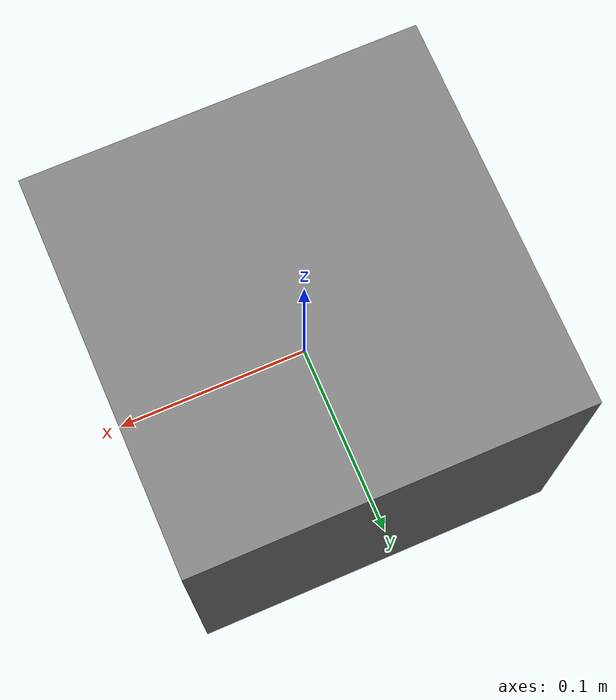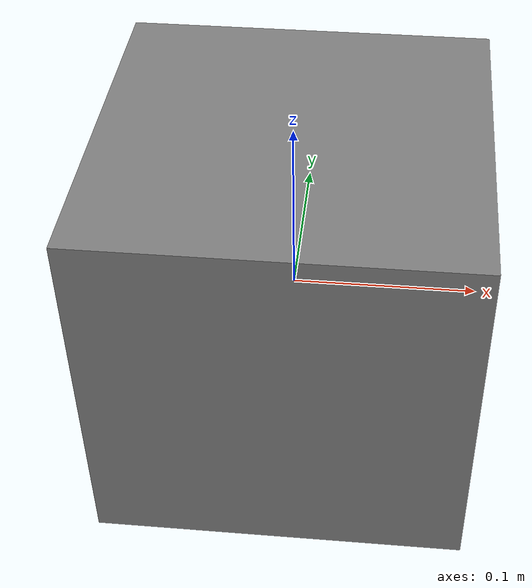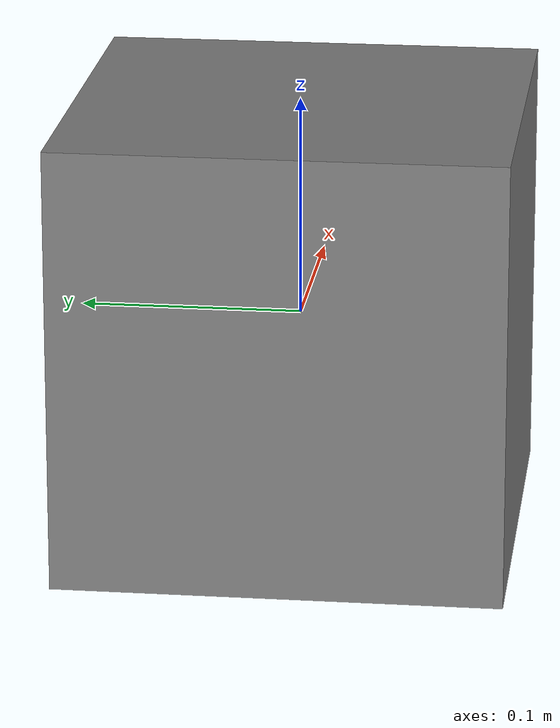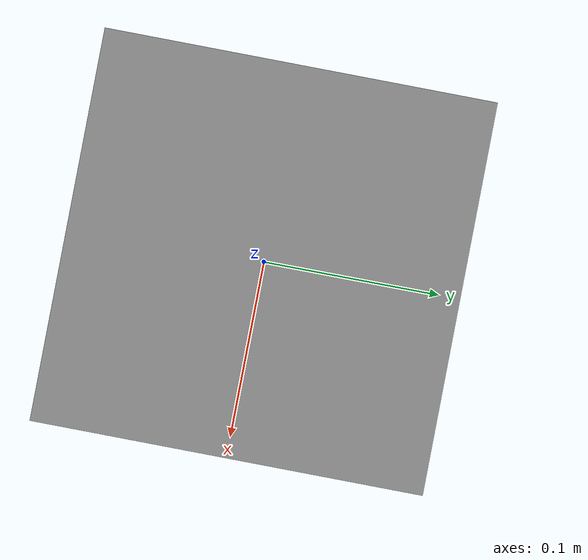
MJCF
<mujoco model="joint_limits">
    <compiler autolimits="true" angle="degree"/>
    <worldbody>
        <!-- Explicitly unlimited joint -->
        <body name="body3">
            <geom type="box" size="0.1 0.1 0.1"/>
            <body name="body4">
                <joint name="unlimited_joint" type="hinge" limited="false" range="-45 45"/>
                <geom type="box" size="0.1 0.1 0.1"/>
            </body>
        </body>

        <!-- Auto-limited joint (autolimits=true, range is set) -->
        <body name="body5">
            <geom type="box" size="0.1 0.1 0.1"/>
            <body name="body6">
                <joint name="auto_limited_joint" type="hinge" limited="auto" range="-30 30"/>
                <geom type="box" size="0.1 0.1 0.1"/>
            </body>
        </body>

        <!-- Auto-limited joint with same range values (should be unlimited) -->
        <body name="body7">
            <geom type="box" size="0.1 0.1 0.1"/>
            <body name="body8">
                <joint name="auto_unlimited_same_range" type="hinge" limited="auto" range="30 30"/>
                <geom type="box" size="0.1 0.1 0.1"/>
            </body>
        </body>
    </worldbody>
</mujoco>
